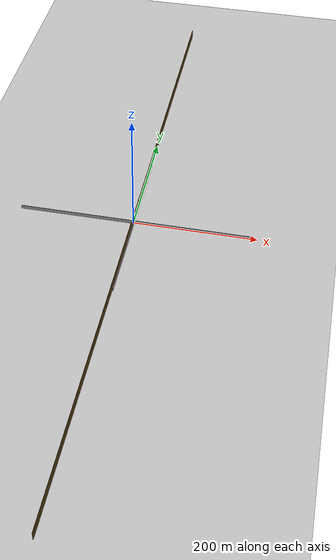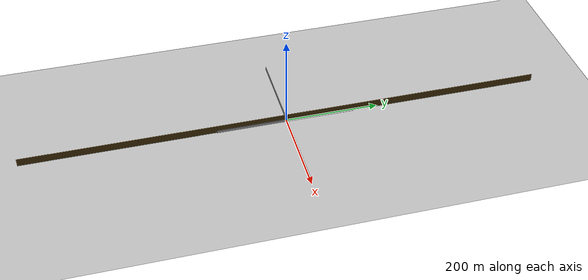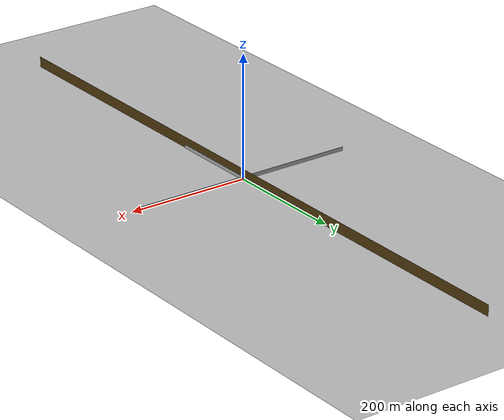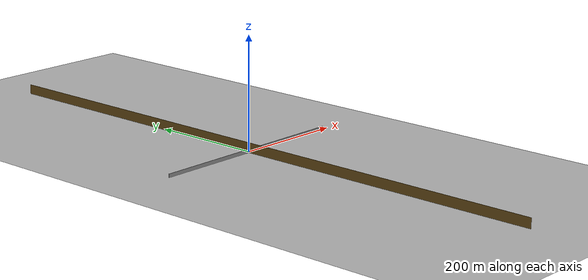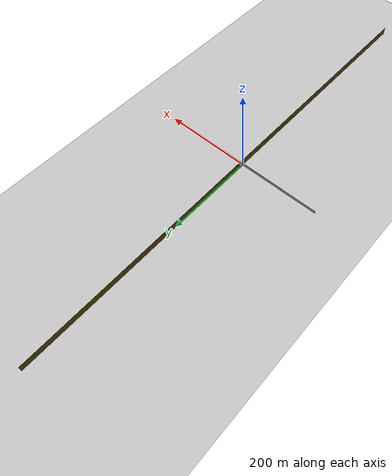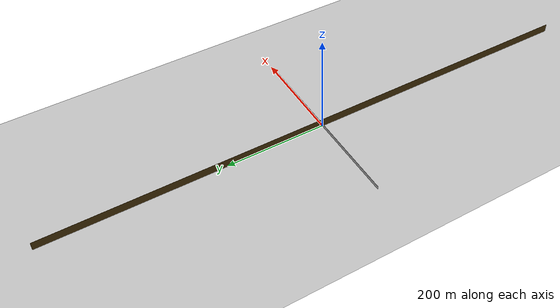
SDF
<sdf version="1.6">
 <world name="default">
  <gravity>0 0 -9.8</gravity>
  <magnetic_field>6e-06 2.3e-05 -4.2e-05</magnetic_field>
  <atmosphere type="adiabatic"/>
  <physics name="default_physics" default="0" type="ode">
   <max_step_size>0.001</max_step_size>
   <real_time_factor>1</real_time_factor>
   <real_time_update_rate>1000</real_time_update_rate>
  </physics>
  <scene><ambient>0.4 0.4 0.4 1</ambient><background>0.7 0.7 0.7 1</background><shadows>1</shadows></scene>
  <spherical_coordinates>
   <surface_model>EARTH_WGS84</surface_model>
   <latitude_deg>0</latitude_deg>
   <longitude_deg>0</longitude_deg>
   <elevation>0</elevation>
   <heading_deg>0</heading_deg>
  </spherical_coordinates>
  <model name="my_ground_plane">
   <static>1</static>
   <link name="link">
    <collision name="collision">
     <geometry><plane><normal>0 0 1</normal><size>3.048 1.524</size></plane></geometry>
     <surface><friction><ode><mu>100</mu><mu2>50</mu2></ode></friction></surface>
    </collision>
    <visual name="visual">
     <cast_shadows>0</cast_shadows>
     <geometry><plane><normal>0 0 1</normal><size>3.048 1.524</size></plane></geometry>
     <material>
      <script>
       <uri>model://my_ground_plane/materials/scripts</uri>
       <uri>model://my_ground_plane/materials/textures</uri>
       <name>MyGroundPlane/Image</name>
      </script>
     </material>
    </visual>
   </link>
   <pose>0.046072 -4.9e-05 0 0 -0 0</pose>
  </model>
  <model name="wall_01">
   <link name="link">
    <inertial>
     <mass>1</mass>
     <inertia>
      <ixx>0.166667</ixx>
      <ixy>0</ixy>
      <ixz>0</ixz>
      <iyy>0.166667</iyy>
      <iyz>0</iyz>
      <izz>0.166667</izz>
     </inertia>
    </inertial>
    <visual name="visual">
     <geometry><box><size>0.0348857 1119.3 32.4806</size></box></geometry>
     <material>
      <script><name>Gazebo/Grey</name><uri>file://media/materials/scripts/gazebo.material</uri></script>
      <shader type="pixel"><normal_map>__default__</normal_map></shader>
      <ambient>0.267 0.188 0.039 1</ambient>
      <diffuse>0.7 0.7 0.7 1</diffuse>
      <specular>0.01 0.01 0.01 1</specular>
      <emissive>0 0 0 1</emissive>
     </material>
    </visual>
    <collision name="collision">
     <geometry><box><size>0.0348857 1119.3 32.4806</size></box></geometry>
     <surface>
      <friction>
       <ode><mu>1</mu><mu2>1</mu2><fdir1>0 0 0</fdir1><slip1>0</slip1><slip2>0</slip2></ode>
       <torsional>
        <coefficient>1</coefficient>
        <patch_radius>0</patch_radius>
        <surface_radius>0</surface_radius>
        <use_patch_radius>1</use_patch_radius>
        <ode><slip>0</slip></ode>
       </torsional>
      </friction>
      <bounce><restitution_coefficient>0</restitution_coefficient><threshold>1e+06</threshold></bounce>
      <contact>
       <collide_without_contact>0</collide_without_contact>
       <collide_without_contact_bitmask>1</collide_without_contact_bitmask>
       <collide_bitmask>1</collide_bitmask>
       <ode>
        <soft_cfm>0</soft_cfm>
        <soft_erp>0.2</soft_erp>
        <kp>1e+13</kp>
        <kd>1</kd>
        <max_vel>0.01</max_vel>
        <min_depth>0</min_depth>
       </ode>
       <bullet>
        <split_impulse>1</split_impulse>
        <split_impulse_penetration_threshold>-0.01</split_impulse_penetration_threshold>
        <soft_cfm>0</soft_cfm>
        <soft_erp>0.2</soft_erp>
        <kp>1e+13</kp>
        <kd>1</kd>
       </bullet>
      </contact>
     </surface>
    </collision>
   </link>
   <static>0</static>
   <pose>0.052539 -0.786529 0.156354 5e-06 -0.000233 -0.0013</pose>
  </model>
  <model name="wall_01_1">
   <link name="link">
    <inertial>
     <mass>1</mass>
     <inertia>
      <ixx>0.166667</ixx>
      <ixy>0</ixy>
      <ixz>0</ixz>
      <iyy>0.166667</iyy>
      <iyz>0</iyz>
      <izz>0.166667</izz>
     </inertia>
    </inertial>
    <visual name="visual">
     <geometry><box><size>0.01655 0.306777 0.0254</size></box></geometry>
     <material>
      <script><name>Gazebo/Grey</name><uri>file://media/materials/scripts/gazebo.material</uri></script>
      <shader type="pixel"><normal_map>__default__</normal_map></shader>
      <ambient>0.267 0.188 0.039 1</ambient>
      <diffuse>0.7 0.7 0.7 1</diffuse>
      <specular>0.01 0.01 0.01 1</specular>
      <emissive>0 0 0 1</emissive>
     </material>
    </visual>
    <collision name="collision">
     <geometry><box><size>0.01655 0.306777 0.03781</size></box></geometry>
     <surface>
      <friction>
       <ode><mu>1</mu><mu2>1</mu2><fdir1>0 0 0</fdir1><slip1>0</slip1><slip2>0</slip2></ode>
       <torsional>
        <coefficient>1</coefficient>
        <patch_radius>0</patch_radius>
        <surface_radius>0</surface_radius>
        <use_patch_radius>1</use_patch_radius>
        <ode><slip>0</slip></ode>
       </torsional>
      </friction>
      <bounce><restitution_coefficient>0</restitution_coefficient><threshold>1e+06</threshold></bounce>
      <contact>
       <collide_without_contact>0</collide_without_contact>
       <collide_without_contact_bitmask>1</collide_without_contact_bitmask>
       <collide_bitmask>1</collide_bitmask>
       <ode>
        <soft_cfm>0</soft_cfm>
        <soft_erp>0.2</soft_erp>
        <kp>1e+13</kp>
        <kd>1</kd>
        <max_vel>0.01</max_vel>
        <min_depth>0</min_depth>
       </ode>
       <bullet>
        <split_impulse>1</split_impulse>
        <split_impulse_penetration_threshold>-0.01</split_impulse_penetration_threshold>
        <soft_cfm>0</soft_cfm>
        <soft_erp>0.2</soft_erp>
        <kp>1e+13</kp>
        <kd>1</kd>
       </bullet>
      </contact>
     </surface>
    </collision>
   </link>
   <static>0</static>
   <pose>1.40857 -0.583804 0.0189 0 1e-06 -3.9e-05</pose>
  </model>
  <model name="wall_01_1_clone">
   <link name="link">
    <inertial>
     <mass>1</mass>
     <inertia>
      <ixx>0.166667</ixx>
      <ixy>0</ixy>
      <ixz>0</ixz>
      <iyy>0.166667</iyy>
      <iyz>0</iyz>
      <izz>0.166667</izz>
     </inertia>
    </inertial>
    <visual name="visual">
     <geometry><box><size>0.01655 0.306777 0.0254</size></box></geometry>
     <material>
      <script><name>Gazebo/Grey</name><uri>file://media/materials/scripts/gazebo.material</uri></script>
      <shader type="pixel"><normal_map>__default__</normal_map></shader>
      <ambient>0.267 0.188 0.039 1</ambient>
      <diffuse>0.7 0.7 0.7 1</diffuse>
      <specular>0.01 0.01 0.01 1</specular>
      <emissive>0 0 0 1</emissive>
     </material>
    </visual>
    <collision name="collision">
     <geometry><box><size>0.01655 0.306777 0.03781</size></box></geometry>
     <surface>
      <friction>
       <ode><mu>1</mu><mu2>1</mu2><fdir1>0 0 0</fdir1><slip1>0</slip1><slip2>0</slip2></ode>
       <torsional>
        <coefficient>1</coefficient>
        <patch_radius>0</patch_radius>
        <surface_radius>0</surface_radius>
        <use_patch_radius>1</use_patch_radius>
        <ode><slip>0</slip></ode>
       </torsional>
      </friction>
      <bounce><restitution_coefficient>0</restitution_coefficient><threshold>1e+06</threshold></bounce>
      <contact>
       <collide_without_contact>0</collide_without_contact>
       <collide_without_contact_bitmask>1</collide_without_contact_bitmask>
       <collide_bitmask>1</collide_bitmask>
       <ode>
        <soft_cfm>0</soft_cfm>
        <soft_erp>0.2</soft_erp>
        <kp>1e+13</kp>
        <kd>1</kd>
        <max_vel>0.01</max_vel>
        <min_depth>0</min_depth>
       </ode>
       <bullet>
        <split_impulse>1</split_impulse>
        <split_impulse_penetration_threshold>-0.01</split_impulse_penetration_threshold>
        <soft_cfm>0</soft_cfm>
        <soft_erp>0.2</soft_erp>
        <kp>1e+13</kp>
        <kd>1</kd>
       </bullet>
      </contact>
     </surface>
    </collision>
   </link>
   <static>0</static>
   <pose>-1.31974 -0.583192 0.018905 0 -0 -0.000412</pose>
  </model>
  <model name="unit_box">
   <pose>0.42547 0.169172 0.233832 5e-06 0 0.001571</pose>
   <link name="link">
    <inertial>
     <mass>1</mass>
     <inertia>
      <ixx>0.166667</ixx>
      <ixy>0</ixy>
      <ixz>0</ixz>
      <iyy>0.166667</iyy>
      <iyz>0</iyz>
      <izz>0.166667</izz>
     </inertia>
    </inertial>
    <collision name="collision"><geometry><box><size>374.352 0.578159 9.77643</size></box></geometry></collision>
    <visual name="visual">
     <geometry><box><size>374.352 0.578159 9.77643</size></box></geometry>
     <material>
      <script><name>Gazebo/Grey</name><uri>file://media/materials/scripts/gazebo.material</uri></script>
     </material>
    </visual>
   </link>
  </model>
  <model name="unit_box_clone">
   <pose>-0.30714 0.161728 0.23383 8e-06 -0 -0.007875</pose>
   <link name="link">
    <inertial>
     <mass>1</mass>
     <inertia>
      <ixx>0.166667</ixx>
      <ixy>0</ixy>
      <ixz>0</ixz>
      <iyy>0.166667</iyy>
      <iyz>0</iyz>
      <izz>0.166667</izz>
     </inertia>
    </inertial>
    <collision name="collision"><geometry><box><size>0.138751 1.02238 0.467671</size></box></geometry></collision>
    <visual name="visual">
     <geometry><box><size>0.138751 1.02238 0.467671</size></box></geometry>
     <material>
      <script><name>Gazebo/Grey</name><uri>file://media/materials/scripts/gazebo.material</uri></script>
     </material>
    </visual>
   </link>
  </model>
  <model name="unit_box_0">
   <pose>1.05273 -0.352965 0.243211 -0 3e-06 -0.001895</pose>
   <link name="link">
    <inertial>
     <mass>1</mass>
     <inertia>
      <ixx>0.166667</ixx>
      <ixy>0</ixy>
      <ixz>0</ixz>
      <iyy>0.166667</iyy>
      <iyz>0</iyz>
      <izz>0.166667</izz>
     </inertia>
    </inertial>
    <collision name="collision"><geometry><box><size>0.738612 298.428 8.68859</size></box></geometry></collision>
    <visual name="visual">
     <geometry><box><size>0.738612 298.428 8.68859</size></box></geometry>
     <material>
      <script><name>Gazebo/Grey</name><uri>file://media/materials/scripts/gazebo.material</uri></script>
     </material>
    </visual>
   </link>
  </model>
  <model name="unit_box_0_clone">
   <pose>-0.935352 -0.355461 0.243213 0 0 -0.00148</pose>
   <link name="link">
    <inertial>
     <mass>1</mass>
     <inertia>
      <ixx>0.166667</ixx>
      <ixy>0</ixy>
      <ixz>0</ixz>
      <iyy>0.166667</iyy>
      <iyz>0</iyz>
      <izz>0.166667</izz>
     </inertia>
    </inertial>
    <collision name="collision"><geometry><box><size>1.10627 0.149642 0.486426</size></box></geometry></collision>
    <visual name="visual">
     <geometry><box><size>1.10627 0.149642 0.486426</size></box></geometry>
     <material>
      <script><name>Gazebo/Grey</name><uri>file://media/materials/scripts/gazebo.material</uri></script>
     </material>
    </visual>
   </link>
  </model>
  <model name="ground_plane">
   <static>1</static>
   <link name="link">
    <collision name="collision">
     <geometry><plane><normal>0 0 1</normal><size>100 100</size></plane></geometry>
     <surface>
      <contact><collide_bitmask>65535</collide_bitmask></contact>
      <friction><ode><mu>100</mu><mu2>50</mu2></ode></friction>
     </surface>
    </collision>
    <visual name="visual">
     <cast_shadows>0</cast_shadows>
     <geometry><plane><normal>0 0 1</normal><size>100 100</size></plane></geometry>
     <material>
      <script><uri>file://media/materials/scripts/gazebo.material</uri><name>Gazebo/Grey</name></script>
     </material>
    </visual>
   </link>
  </model>
  <light name="user_point_light_0" type="point">
   <pose>0.182766 -0.100316 1 0 -0 0</pose>
   <diffuse>0.5 0.5 0.5 1</diffuse>
   <specular>0.1 0.1 0.1 1</specular>
   <attenuation>
    <range>20</range>
    <constant>0.5</constant>
    <linear>0.01</linear>
    <quadratic>0.001</quadratic>
   </attenuation>
   <cast_shadows>0</cast_shadows>
   <direction>0 0 -1</direction>
  </light>
 </world>
</sdf>
